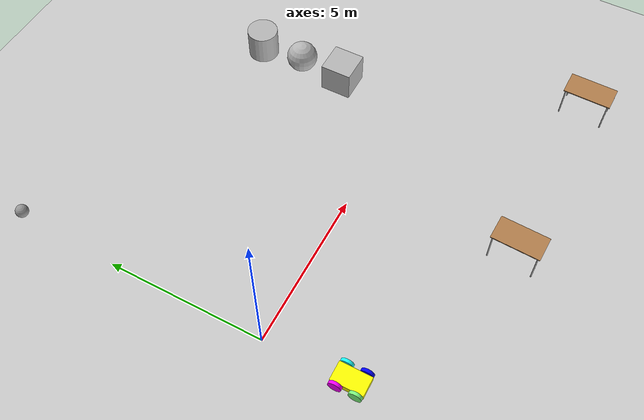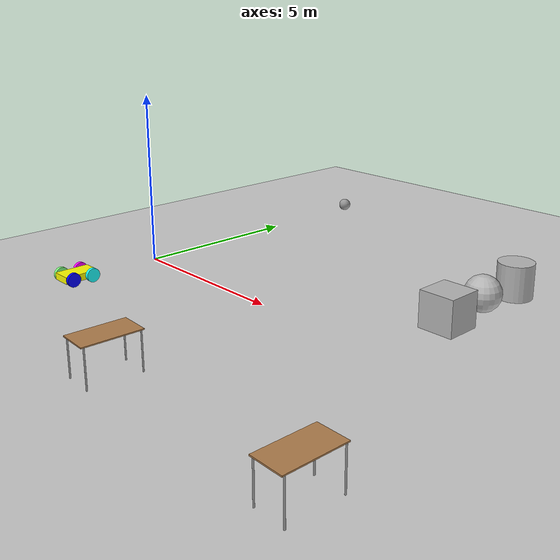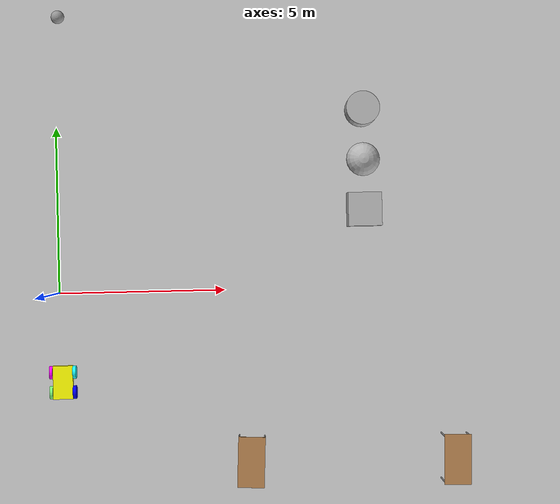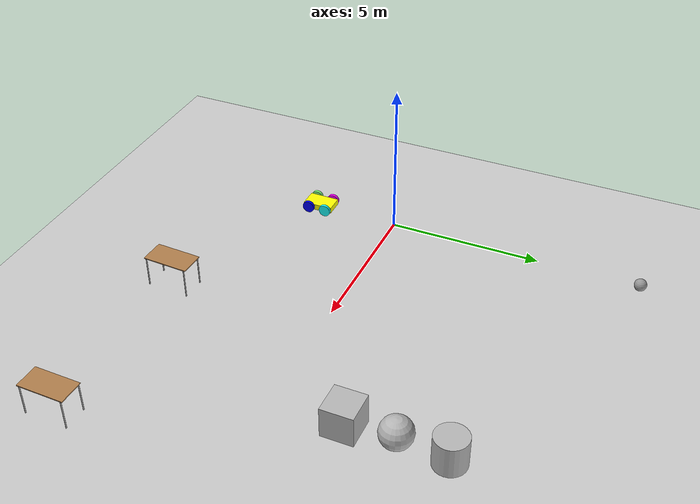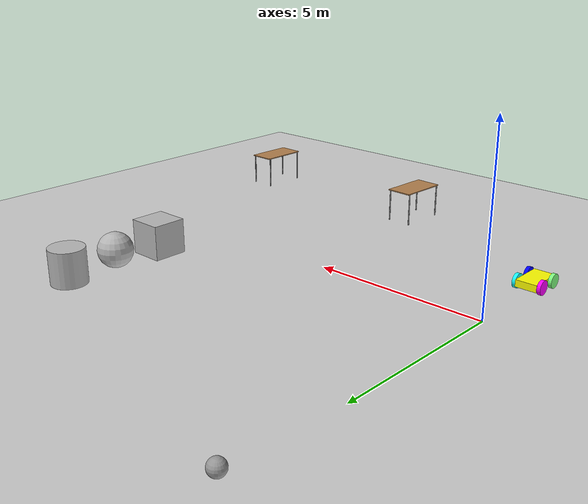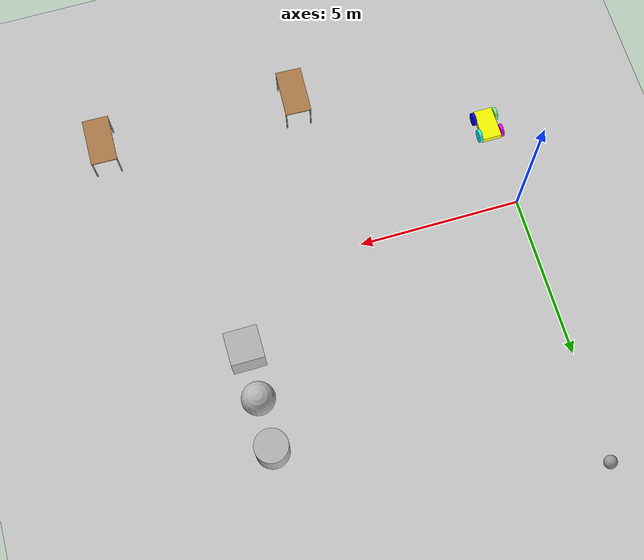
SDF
<sdf version="1.6">
 <world name="default">
  <model name="ground_plane">
   <static>1</static>
   <link name="link">
    <collision name="collision">
     <geometry><plane><normal>0 0 1</normal><size>100 100</size></plane></geometry>
     <surface>
      <contact><collide_bitmask>65535</collide_bitmask></contact>
      <friction><ode><mu>100</mu><mu2>50</mu2></ode></friction>
     </surface>
    </collision>
    <visual name="visual">
     <cast_shadows>0</cast_shadows>
     <geometry><plane><normal>0 0 1</normal><size>100 100</size></plane></geometry>
     <material>
      <script><uri>file://media/materials/scripts/gazebo.material</uri><name>Gazebo/Grey</name></script>
     </material>
    </visual>
   </link>
  </model>
  <model name="textured_shapes">
   <pose>9.21864 3.83776 0.5 0 -0 0</pose>
   <link name="box">
    <pose>0 -1.5 0 0 -0 0</pose>
    <collision name="collision"><geometry><box><size>1 1 1</size></box></geometry></collision>
    <visual name="visual">
     <geometry><box><size>1 1 1</size></box></geometry>
     <material>
      <script>
       <uri>model://textured_shapes/materials/scripts</uri>
       <uri>model://textured_shapes/materials/textures</uri>
       <name>TexturedShape/Squares</name>
      </script>
     </material>
    </visual>
    <inertial>
     <inertia><ixx>1</ixx><ixy>0</ixy><ixz>0</ixz><iyy>1</iyy><iyz>0</iyz><izz>1</izz></inertia>
     <mass>1</mass>
    </inertial>
   </link>
   <link name="sphere">
    <collision name="collision"><geometry><sphere><radius>0.5</radius></sphere></geometry></collision>
    <visual name="visual">
     <geometry><sphere><radius>0.5</radius></sphere></geometry>
     <material>
      <script>
       <uri>model://textured_shapes/materials/scripts</uri>
       <uri>model://textured_shapes/materials/textures</uri>
       <name>TexturedShape/Squares</name>
      </script>
     </material>
    </visual>
    <inertial>
     <inertia><ixx>1</ixx><ixy>0</ixy><ixz>0</ixz><iyy>1</iyy><iyz>0</iyz><izz>1</izz></inertia>
     <mass>1</mass>
    </inertial>
   </link>
   <link name="cylinder">
    <pose>0 1.5 0 0 -0 0</pose>
    <collision name="collision">
     <geometry><cylinder><radius>0.5</radius><length>1</length></cylinder></geometry>
    </collision>
    <visual name="visual">
     <geometry><cylinder><radius>0.5</radius><length>1</length></cylinder></geometry>
     <material>
      <script>
       <uri>model://textured_shapes/materials/scripts</uri>
       <uri>model://textured_shapes/materials/textures</uri>
       <name>TexturedShape/Squares</name>
      </script>
     </material>
    </visual>
    <inertial>
     <inertia><ixx>1</ixx><ixy>0</ixy><ixz>0</ixz><iyy>1</iyy><iyz>0</iyz><izz>1</izz></inertia>
     <mass>1</mass>
    </inertial>
   </link>
  </model>
  <model name="table_1">
   <static>1</static>
   <link name="link">
    <collision name="surface">
     <pose>0 0 1 0 -0 0</pose>
     <geometry><box><size>1.5 0.8 0.03</size></box></geometry>
     <surface><friction><ode><mu>0.6</mu><mu2>0.6</mu2></ode></friction></surface>
    </collision>
    <visual name="visual1">
     <pose>0 0 1 0 -0 0</pose>
     <geometry><box><size>1.5 0.8 0.03</size></box></geometry>
     <material>
      <script><uri>file://media/materials/scripts/gazebo.material</uri><name>Gazebo/Wood</name></script>
     </material>
    </visual>
    <collision name="front_left_leg">
     <pose>0.68 0.38 0.5 0 -0 0</pose>
     <geometry><cylinder><radius>0.02</radius><length>1</length></cylinder></geometry>
    </collision>
    <visual name="front_left_leg">
     <pose>0.68 0.38 0.5 0 -0 0</pose>
     <geometry><cylinder><radius>0.02</radius><length>1</length></cylinder></geometry>
     <material>
      <script><uri>file://media/materials/scripts/gazebo.material</uri><name>Gazebo/Grey</name></script>
     </material>
    </visual>
    <collision name="front_right_leg">
     <pose>0.68 -0.38 0.5 0 -0 0</pose>
     <geometry><cylinder><radius>0.02</radius><length>1</length></cylinder></geometry>
    </collision>
    <visual name="front_right_leg">
     <pose>0.68 -0.38 0.5 0 -0 0</pose>
     <geometry><cylinder><radius>0.02</radius><length>1</length></cylinder></geometry>
     <material>
      <script><uri>file://media/materials/scripts/gazebo.material</uri><name>Gazebo/Grey</name></script>
     </material>
    </visual>
    <collision name="back_right_leg">
     <pose>-0.68 -0.38 0.5 0 -0 0</pose>
     <geometry><cylinder><radius>0.02</radius><length>1</length></cylinder></geometry>
    </collision>
    <visual name="back_right_leg">
     <pose>-0.68 -0.38 0.5 0 -0 0</pose>
     <geometry><cylinder><radius>0.02</radius><length>1</length></cylinder></geometry>
     <material>
      <script><uri>file://media/materials/scripts/gazebo.material</uri><name>Gazebo/Grey</name></script>
     </material>
    </visual>
    <collision name="back_left_leg">
     <pose>-0.68 0.38 0.5 0 -0 0</pose>
     <geometry><cylinder><radius>0.02</radius><length>1</length></cylinder></geometry>
    </collision>
    <visual name="back_left_leg">
     <pose>-0.68 0.38 0.5 0 -0 0</pose>
     <geometry><cylinder><radius>0.02</radius><length>1</length></cylinder></geometry>
     <material>
      <script><uri>file://media/materials/scripts/gazebo.material</uri><name>Gazebo/Grey</name></script>
     </material>
    </visual>
   </link>
   <pose>5.69325 -5.09077 0 0 0 -1.61488</pose>
  </model>
  <model name="table_2">
   <static>1</static>
   <link name="link">
    <collision name="surface">
     <pose>0 0 1 0 -0 0</pose>
     <geometry><box><size>1.5 0.8 0.03</size></box></geometry>
     <surface><friction><ode><mu>0.6</mu><mu2>0.6</mu2></ode></friction></surface>
    </collision>
    <visual name="visual1">
     <pose>0 0 1 0 -0 0</pose>
     <geometry><box><size>1.5 0.8 0.03</size></box></geometry>
     <material>
      <script><uri>file://media/materials/scripts/gazebo.material</uri><name>Gazebo/Wood</name></script>
     </material>
    </visual>
    <collision name="front_left_leg">
     <pose>0.68 0.38 0.5 0 -0 0</pose>
     <geometry><cylinder><radius>0.02</radius><length>1</length></cylinder></geometry>
    </collision>
    <visual name="front_left_leg">
     <pose>0.68 0.38 0.5 0 -0 0</pose>
     <geometry><cylinder><radius>0.02</radius><length>1</length></cylinder></geometry>
     <material>
      <script><uri>file://media/materials/scripts/gazebo.material</uri><name>Gazebo/Grey</name></script>
     </material>
    </visual>
    <collision name="front_right_leg">
     <pose>0.68 -0.38 0.5 0 -0 0</pose>
     <geometry><cylinder><radius>0.02</radius><length>1</length></cylinder></geometry>
    </collision>
    <visual name="front_right_leg">
     <pose>0.68 -0.38 0.5 0 -0 0</pose>
     <geometry><cylinder><radius>0.02</radius><length>1</length></cylinder></geometry>
     <material>
      <script><uri>file://media/materials/scripts/gazebo.material</uri><name>Gazebo/Grey</name></script>
     </material>
    </visual>
    <collision name="back_right_leg">
     <pose>-0.68 -0.38 0.5 0 -0 0</pose>
     <geometry><cylinder><radius>0.02</radius><length>1</length></cylinder></geometry>
    </collision>
    <visual name="back_right_leg">
     <pose>-0.68 -0.38 0.5 0 -0 0</pose>
     <geometry><cylinder><radius>0.02</radius><length>1</length></cylinder></geometry>
     <material>
      <script><uri>file://media/materials/scripts/gazebo.material</uri><name>Gazebo/Grey</name></script>
     </material>
    </visual>
    <collision name="back_left_leg">
     <pose>-0.68 0.38 0.5 0 -0 0</pose>
     <geometry><cylinder><radius>0.02</radius><length>1</length></cylinder></geometry>
    </collision>
    <visual name="back_left_leg">
     <pose>-0.68 0.38 0.5 0 -0 0</pose>
     <geometry><cylinder><radius>0.02</radius><length>1</length></cylinder></geometry>
     <material>
      <script><uri>file://media/materials/scripts/gazebo.material</uri><name>Gazebo/Grey</name></script>
     </material>
    </visual>
   </link>
   <pose>11.8057 -5.13453 0 0 0 -1.59133</pose>
  </model>
  <model name="myrobot_clone">
   <link name="link_0">
    <inertial>
     <mass>1</mass>
     <inertia>
      <ixx>0.166667</ixx>
      <ixy>0</ixy>
      <ixz>0</ixz>
      <iyy>0.166667</iyy>
      <iyz>0</iyz>
      <izz>0.166667</izz>
     </inertia>
    </inertial>
    <visual name="visual">
     <geometry><box><size>0.6 1 0.2</size></box></geometry>
     <material>
      <lighting>1</lighting>
      <script><uri>file://media/materials/scripts/gazebo.material</uri><name>Gazebo/Grey</name></script>
      <shader type="pixel"><normal_map>__default__</normal_map></shader>
      <ambient>1 1 0 1</ambient>
      <diffuse>1 1 0 1</diffuse>
      <specular>1 1 0 1</specular>
      <emissive>1 1 0 1</emissive>
     </material>
    </visual>
    <collision name="collision">
     <geometry><box><size>0.6 1 0.2</size></box></geometry>
     <surface>
      <friction>
       <ode><mu>1</mu><mu2>1</mu2><fdir1>0 0 0</fdir1><slip1>0</slip1><slip2>0</slip2></ode>
       <torsional>
        <coefficient>1</coefficient>
        <patch_radius>0</patch_radius>
        <surface_radius>0</surface_radius>
        <use_patch_radius>1</use_patch_radius>
        <ode><slip>0</slip></ode>
       </torsional>
      </friction>
      <bounce><restitution_coefficient>0</restitution_coefficient><threshold>1e+06</threshold></bounce>
      <contact>
       <collide_without_contact>0</collide_without_contact>
       <collide_without_contact_bitmask>1</collide_without_contact_bitmask>
       <collide_bitmask>1</collide_bitmask>
       <ode>
        <soft_cfm>0</soft_cfm>
        <soft_erp>0.2</soft_erp>
        <kp>1e+13</kp>
        <kd>1</kd>
        <max_vel>0.01</max_vel>
        <min_depth>0</min_depth>
       </ode>
       <bullet>
        <split_impulse>1</split_impulse>
        <split_impulse_penetration_threshold>-0.01</split_impulse_penetration_threshold>
        <soft_cfm>0</soft_cfm>
        <soft_erp>0.2</soft_erp>
        <kp>1e+13</kp>
        <kd>1</kd>
       </bullet>
      </contact>
     </surface>
    </collision>
   </link>
   <link name="link_1">
    <pose>0.350019 0.3 0 0 -0 0</pose>
    <inertial>
     <mass>1</mass>
     <inertia><ixx>0.145833</ixx><ixy>0</ixy><ixz>0</ixz><iyy>0.145833</iyy><iyz>0</iyz><izz>0.125</izz></inertia>
    </inertial>
    <visual name="visual">
     <pose>0 0 0 0 1.5707 0</pose>
     <geometry><cylinder><radius>0.2</radius><length>0.1</length></cylinder></geometry>
     <material>
      <lighting>1</lighting>
      <script><uri>file://media/materials/scripts/gazebo.material</uri><name>Gazebo/Grey</name></script>
      <shader type="pixel"><normal_map>__default__</normal_map></shader>
      <ambient>0.1 1 1 1</ambient>
      <diffuse>1 1 1 1</diffuse>
      <specular>1 1 1 1</specular>
      <emissive>0 0 0 1</emissive>
     </material>
    </visual>
    <collision name="collision">
     <pose>0 0 0 0 1.5707 0</pose>
     <geometry><cylinder><radius>0.2</radius><length>0.1</length></cylinder></geometry>
     <surface>
      <friction>
       <ode><mu>1</mu><mu2>1</mu2><fdir1>0 0 0</fdir1><slip1>0</slip1><slip2>0</slip2></ode>
       <torsional>
        <coefficient>1</coefficient>
        <patch_radius>0</patch_radius>
        <surface_radius>0</surface_radius>
        <use_patch_radius>1</use_patch_radius>
        <ode><slip>0</slip></ode>
       </torsional>
      </friction>
      <bounce><restitution_coefficient>0</restitution_coefficient><threshold>1e+06</threshold></bounce>
      <contact>
       <collide_without_contact>0</collide_without_contact>
       <collide_without_contact_bitmask>1</collide_without_contact_bitmask>
       <collide_bitmask>1</collide_bitmask>
       <ode>
        <soft_cfm>0</soft_cfm>
        <soft_erp>0.2</soft_erp>
        <kp>1e+13</kp>
        <kd>1</kd>
        <max_vel>0.01</max_vel>
        <min_depth>0</min_depth>
       </ode>
       <bullet>
        <split_impulse>1</split_impulse>
        <split_impulse_penetration_threshold>-0.01</split_impulse_penetration_threshold>
        <soft_cfm>0</soft_cfm>
        <soft_erp>0.2</soft_erp>
        <kp>1e+13</kp>
        <kd>1</kd>
       </bullet>
      </contact>
     </surface>
    </collision>
   </link>
   <link name="link_1_clone">
    <pose>0.350019 -0.3 0 0 -0 0</pose>
    <inertial>
     <mass>1</mass>
     <inertia><ixx>0.145833</ixx><ixy>0</ixy><ixz>0</ixz><iyy>0.145833</iyy><iyz>0</iyz><izz>0.125</izz></inertia>
    </inertial>
    <visual name="visual">
     <pose>0 0 0 0 1.5707 0</pose>
     <geometry><cylinder><radius>0.2</radius><length>0.1</length></cylinder></geometry>
     <material>
      <lighting>1</lighting>
      <script><uri>file://media/materials/scripts/gazebo.material</uri><name>Gazebo/Grey</name></script>
      <shader type="pixel"><normal_map>__default__</normal_map></shader>
      <ambient>0 0 1 1</ambient>
      <diffuse>0 0 1 1</diffuse>
      <specular>0 0 1 1</specular>
      <emissive>0 0 1 1</emissive>
     </material>
    </visual>
    <collision name="collision">
     <pose>0 0 0 0 1.5707 0</pose>
     <geometry><cylinder><radius>0.2</radius><length>0.1</length></cylinder></geometry>
     <surface>
      <friction>
       <ode><mu>1</mu><mu2>1</mu2><fdir1>0 0 0</fdir1><slip1>0</slip1><slip2>0</slip2></ode>
       <torsional>
        <coefficient>1</coefficient>
        <patch_radius>0</patch_radius>
        <surface_radius>0</surface_radius>
        <use_patch_radius>1</use_patch_radius>
        <ode><slip>0</slip></ode>
       </torsional>
      </friction>
      <bounce><restitution_coefficient>0</restitution_coefficient><threshold>1e+06</threshold></bounce>
      <contact>
       <collide_without_contact>0</collide_without_contact>
       <collide_without_contact_bitmask>1</collide_without_contact_bitmask>
       <collide_bitmask>1</collide_bitmask>
       <ode>
        <soft_cfm>0</soft_cfm>
        <soft_erp>0.2</soft_erp>
        <kp>1e+13</kp>
        <kd>1</kd>
        <max_vel>0.01</max_vel>
        <min_depth>0</min_depth>
       </ode>
       <bullet>
        <split_impulse>1</split_impulse>
        <split_impulse_penetration_threshold>-0.01</split_impulse_penetration_threshold>
        <soft_cfm>0</soft_cfm>
        <soft_erp>0.2</soft_erp>
        <kp>1e+13</kp>
        <kd>1</kd>
       </bullet>
      </contact>
     </surface>
    </collision>
   </link>
   <link name="link_1_clone_0">
    <pose>-0.350019 0.3 0 0 -0 0</pose>
    <inertial>
     <mass>1</mass>
     <inertia><ixx>0.145833</ixx><ixy>0</ixy><ixz>0</ixz><iyy>0.145833</iyy><iyz>0</iyz><izz>0.125</izz></inertia>
    </inertial>
    <visual name="visual">
     <pose>0 0 0 0 1.5707 0</pose>
     <geometry><cylinder><radius>0.2</radius><length>0.1</length></cylinder></geometry>
     <material>
      <lighting>1</lighting>
      <script><uri>file://media/materials/scripts/gazebo.material</uri><name>Gazebo/Grey</name></script>
      <shader type="pixel"><normal_map>__default__</normal_map></shader>
      <ambient>1 0 1 0</ambient>
      <diffuse>1 0 1 0</diffuse>
      <specular>1 0 1 0</specular>
      <emissive>0 0 0 1</emissive>
     </material>
    </visual>
    <collision name="collision">
     <pose>0 0 0 0 1.5707 0</pose>
     <geometry><cylinder><radius>0.2</radius><length>0.1</length></cylinder></geometry>
     <surface>
      <friction>
       <ode><mu>1</mu><mu2>1</mu2><fdir1>0 0 0</fdir1><slip1>0</slip1><slip2>0</slip2></ode>
       <torsional>
        <coefficient>1</coefficient>
        <patch_radius>0</patch_radius>
        <surface_radius>0</surface_radius>
        <use_patch_radius>1</use_patch_radius>
        <ode><slip>0</slip></ode>
       </torsional>
      </friction>
      <bounce><restitution_coefficient>0</restitution_coefficient><threshold>1e+06</threshold></bounce>
      <contact>
       <collide_without_contact>0</collide_without_contact>
       <collide_without_contact_bitmask>1</collide_without_contact_bitmask>
       <collide_bitmask>1</collide_bitmask>
       <ode>
        <soft_cfm>0</soft_cfm>
        <soft_erp>0.2</soft_erp>
        <kp>1e+13</kp>
        <kd>1</kd>
        <max_vel>0.01</max_vel>
        <min_depth>0</min_depth>
       </ode>
       <bullet>
        <split_impulse>1</split_impulse>
        <split_impulse_penetration_threshold>-0.01</split_impulse_penetration_threshold>
        <soft_cfm>0</soft_cfm>
        <soft_erp>0.2</soft_erp>
        <kp>1e+13</kp>
        <kd>1</kd>
       </bullet>
      </contact>
     </surface>
    </collision>
   </link>
   <link name="link_1_clone_0_clone">
    <pose>-0.350019 -0.3 0 0 -0 0</pose>
    <inertial>
     <mass>1</mass>
     <inertia><ixx>0.145833</ixx><ixy>0</ixy><ixz>0</ixz><iyy>0.145833</iyy><iyz>0</iyz><izz>0.125</izz></inertia>
    </inertial>
    <visual name="visual">
     <pose>0 0 0 0 1.5707 0</pose>
     <geometry><cylinder><radius>0.2</radius><length>0.1</length></cylinder></geometry>
     <material>
      <lighting>1</lighting>
      <script><uri>file://media/materials/scripts/gazebo.material</uri><name>Gazebo/Grey</name></script>
      <shader type="pixel"><normal_map>__default__</normal_map></shader>
      <ambient>0.5 1 0.5 1</ambient>
      <diffuse>0.5 1 0.5 1</diffuse>
      <specular>0.5 1 0.5 1</specular>
      <emissive>0.5 1 0.5 1</emissive>
     </material>
    </visual>
    <collision name="collision">
     <pose>0 0 0 0 1.5707 0</pose>
     <geometry><cylinder><radius>0.2</radius><length>0.1</length></cylinder></geometry>
     <surface>
      <friction>
       <ode><mu>1</mu><mu2>1</mu2><fdir1>0 0 0</fdir1><slip1>0</slip1><slip2>0</slip2></ode>
       <torsional>
        <coefficient>1</coefficient>
        <patch_radius>0</patch_radius>
        <surface_radius>0</surface_radius>
        <use_patch_radius>1</use_patch_radius>
        <ode><slip>0</slip></ode>
       </torsional>
      </friction>
      <bounce><restitution_coefficient>0</restitution_coefficient><threshold>1e+06</threshold></bounce>
      <contact>
       <collide_without_contact>0</collide_without_contact>
       <collide_without_contact_bitmask>1</collide_without_contact_bitmask>
       <collide_bitmask>1</collide_bitmask>
       <ode>
        <soft_cfm>0</soft_cfm>
        <soft_erp>0.2</soft_erp>
        <kp>1e+13</kp>
        <kd>1</kd>
        <max_vel>0.01</max_vel>
        <min_depth>0</min_depth>
       </ode>
       <bullet>
        <split_impulse>1</split_impulse>
        <split_impulse_penetration_threshold>-0.01</split_impulse_penetration_threshold>
        <soft_cfm>0</soft_cfm>
        <soft_erp>0.2</soft_erp>
        <kp>1e+13</kp>
        <kd>1</kd>
       </bullet>
      </contact>
     </surface>
    </collision>
   </link>
   <joint name="link_0_JOINT_1" type="revolute">
    <parent>link_0</parent>
    <child>link_1</child>
    <axis>
     <xyz>0 0 1</xyz>
     <use_parent_model_frame>0</use_parent_model_frame>
     <limit>
      <lower>-1.79769e+308</lower>
      <upper>1.79769e+308</upper>
      <effort>-1</effort>
      <velocity>-1</velocity>
     </limit>
     <dynamics>
      <spring_reference>0</spring_reference>
      <spring_stiffness>0</spring_stiffness>
      <damping>0</damping>
      <friction>0</friction>
     </dynamics>
    </axis>
    <physics>
     <ode><limit><cfm>0</cfm><erp>0.2</erp></limit><suspension><cfm>0</cfm><erp>0.2</erp></suspension></ode>
    </physics>
   </joint>
   <joint name="link_0_JOINT_2" type="revolute">
    <parent>link_0</parent>
    <child>link_1_clone</child>
    <axis>
     <xyz>0 0 1</xyz>
     <use_parent_model_frame>0</use_parent_model_frame>
     <limit>
      <lower>-1.79769e+308</lower>
      <upper>1.79769e+308</upper>
      <effort>-1</effort>
      <velocity>-1</velocity>
     </limit>
     <dynamics>
      <spring_reference>0</spring_reference>
      <spring_stiffness>0</spring_stiffness>
      <damping>0</damping>
      <friction>0</friction>
     </dynamics>
    </axis>
    <physics>
     <ode><limit><cfm>0</cfm><erp>0.2</erp></limit><suspension><cfm>0</cfm><erp>0.2</erp></suspension></ode>
    </physics>
   </joint>
   <joint name="link_0_JOINT_3" type="revolute">
    <parent>link_0</parent>
    <child>link_1_clone_0</child>
    <axis>
     <xyz>0 0 1</xyz>
     <use_parent_model_frame>0</use_parent_model_frame>
     <limit>
      <lower>-1.79769e+308</lower>
      <upper>1.79769e+308</upper>
      <effort>-1</effort>
      <velocity>-1</velocity>
     </limit>
     <dynamics>
      <spring_reference>0</spring_reference>
      <spring_stiffness>0</spring_stiffness>
      <damping>0</damping>
      <friction>0</friction>
     </dynamics>
    </axis>
    <physics>
     <ode><limit><cfm>0</cfm><erp>0.2</erp></limit><suspension><cfm>0</cfm><erp>0.2</erp></suspension></ode>
    </physics>
   </joint>
   <joint name="link_0_JOINT_5" type="revolute">
    <parent>link_0</parent>
    <child>link_1_clone_0_clone</child>
    <axis>
     <xyz>0 0 1</xyz>
     <use_parent_model_frame>0</use_parent_model_frame>
     <limit>
      <lower>-1.79769e+308</lower>
      <upper>1.79769e+308</upper>
      <effort>-1</effort>
      <velocity>-1</velocity>
     </limit>
     <dynamics>
      <spring_reference>0</spring_reference>
      <spring_stiffness>0</spring_stiffness>
      <damping>0</damping>
      <friction>0</friction>
     </dynamics>
    </axis>
    <physics>
     <ode><limit><cfm>0</cfm><erp>0.2</erp></limit><suspension><cfm>0</cfm><erp>0.2</erp></suspension></ode>
    </physics>
   </joint>
   <static>0</static>
   <pose>0.076204 -2.67177 0.200003 -6e-06 -0 0.0024</pose>
  </model>
  <model name="ball_chasser">
   <link name="link_0">
    <inertial>
     <mass>1</mass>
     <inertia><ixx>0.1</ixx><ixy>0</ixy><ixz>0</ixz><iyy>0.1</iyy><iyz>0</iyz><izz>0.1</izz></inertia>
    </inertial>
    <visual name="visual">
     <geometry><sphere><radius>0.2</radius></sphere></geometry>
     <material>
      <lighting>1</lighting>
      <script><uri>file://media/materials/scripts/gazebo.material</uri><name>Gazebo/Grey</name></script>
      <shader type="pixel"><normal_map>__default__</normal_map></shader>
      <ambient>1 1 1 1</ambient>
      <diffuse>1 1 1 1</diffuse>
      <specular>1 1 1 1</specular>
      <emissive>1 1 1 1</emissive>
     </material>
    </visual>
    <collision name="collision">
     <geometry><sphere><radius>0.2</radius></sphere></geometry>
     <surface>
      <friction>
       <ode><mu>1</mu><mu2>1</mu2><fdir1>0 0 0</fdir1><slip1>0</slip1><slip2>0</slip2></ode>
       <torsional>
        <coefficient>1</coefficient>
        <patch_radius>0</patch_radius>
        <surface_radius>0</surface_radius>
        <use_patch_radius>1</use_patch_radius>
        <ode><slip>0</slip></ode>
       </torsional>
      </friction>
      <bounce><restitution_coefficient>0</restitution_coefficient><threshold>1e+06</threshold></bounce>
      <contact>
       <collide_without_contact>0</collide_without_contact>
       <collide_without_contact_bitmask>1</collide_without_contact_bitmask>
       <collide_bitmask>1</collide_bitmask>
       <ode>
        <soft_cfm>0</soft_cfm>
        <soft_erp>0.2</soft_erp>
        <kp>1e+13</kp>
        <kd>1</kd>
        <max_vel>0.01</max_vel>
        <min_depth>0</min_depth>
       </ode>
       <bullet>
        <split_impulse>1</split_impulse>
        <split_impulse_penetration_threshold>-0.01</split_impulse_penetration_threshold>
        <soft_cfm>0</soft_cfm>
        <soft_erp>0.2</soft_erp>
        <kp>1e+13</kp>
        <kd>1</kd>
       </bullet>
      </contact>
     </surface>
    </collision>
   </link>
   <static>0</static>
   <pose>0.135037 8.32481 0.2 0 -0 0</pose>
  </model>
 </world>
</sdf>
